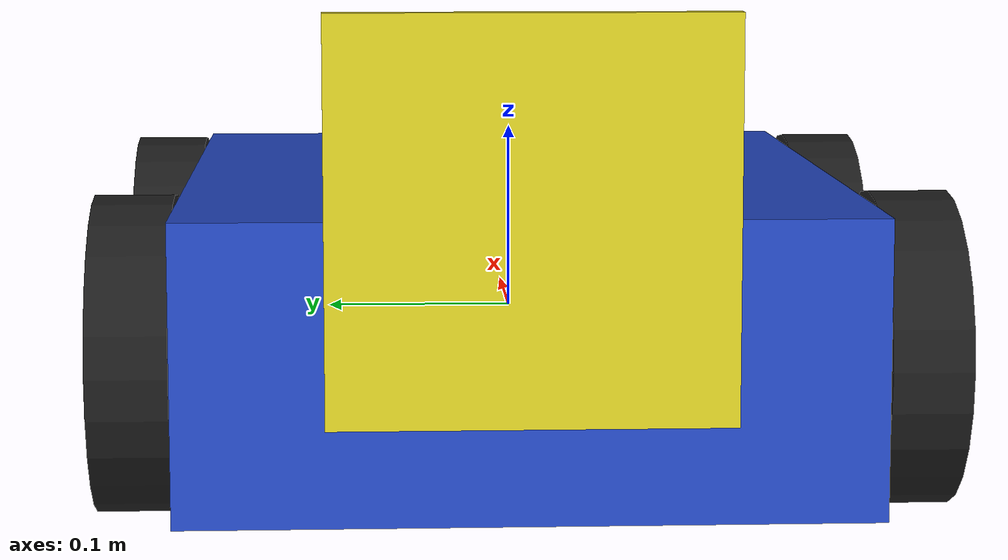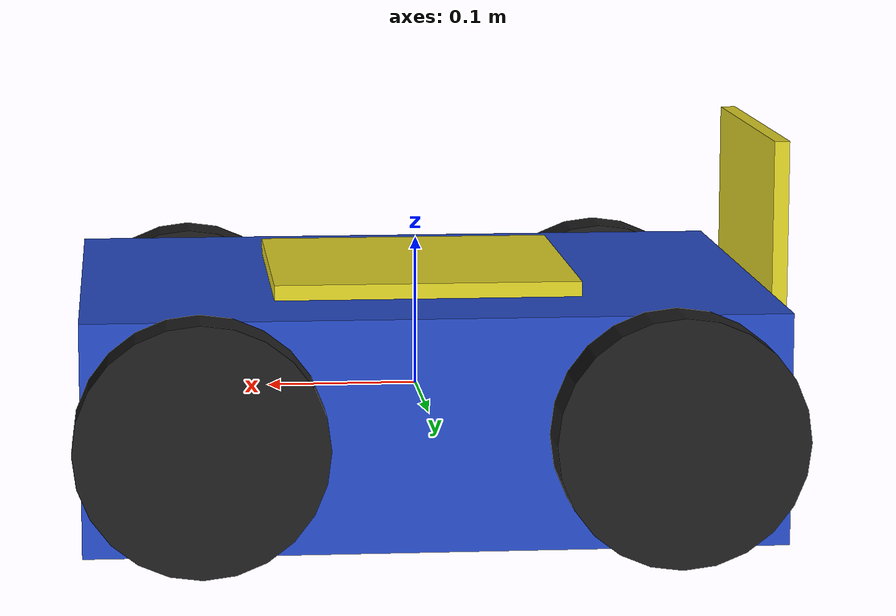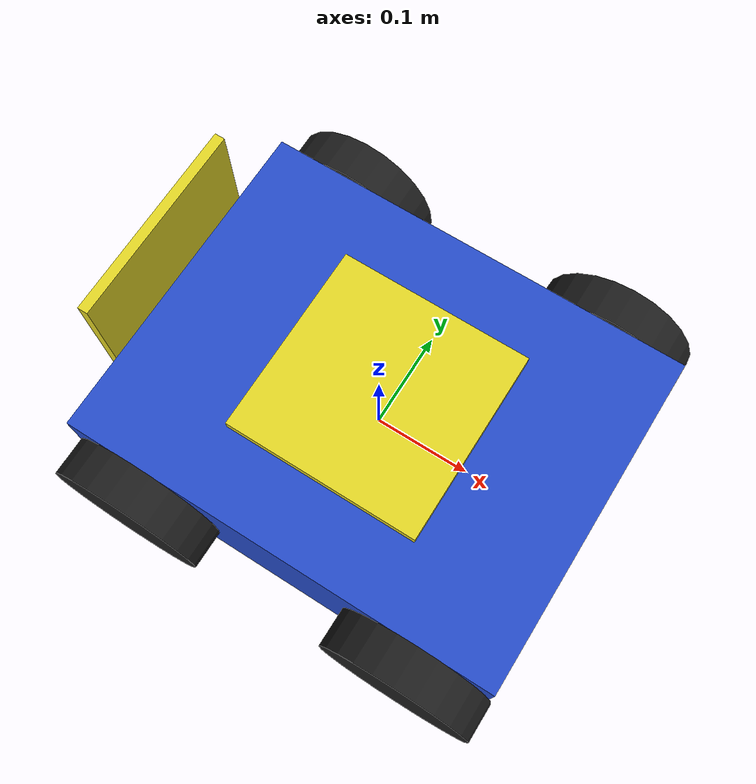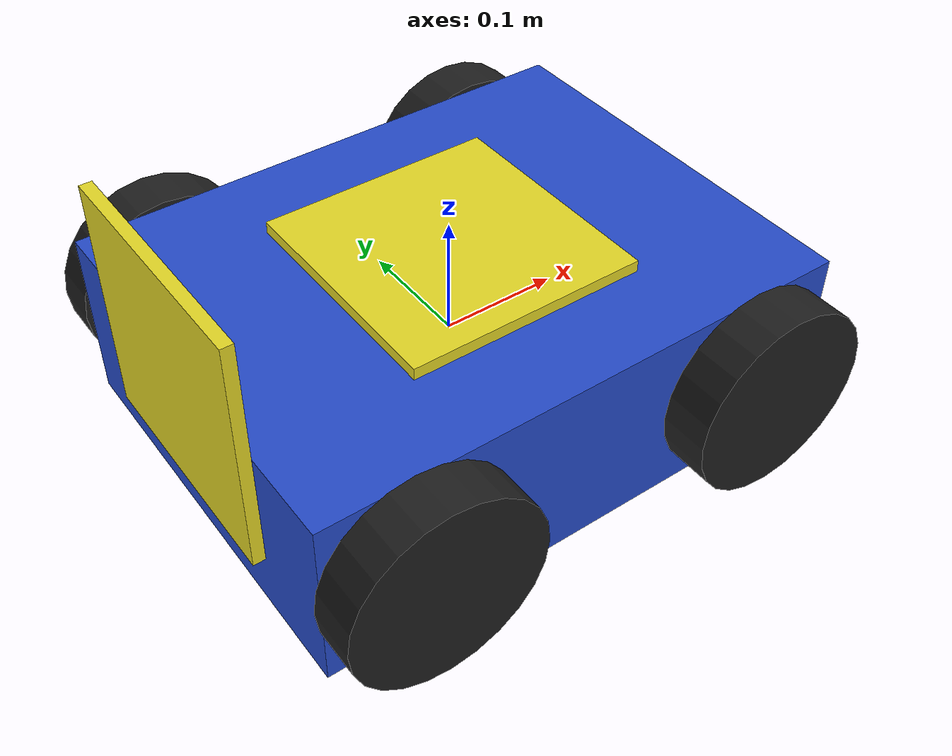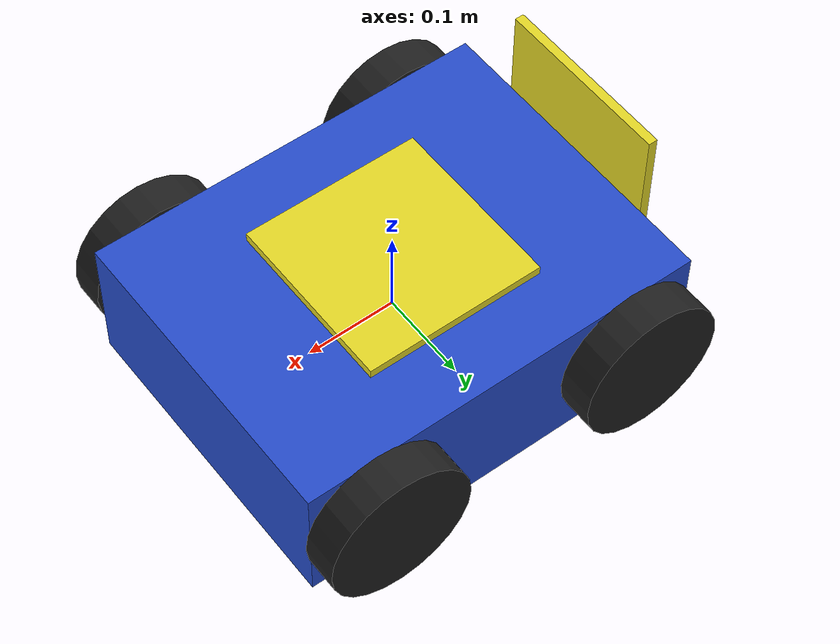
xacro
<?xml version="1.0"?>
<robot name="leader_robot" xmlns:xacro="http://www.ros.org/wiki/xacro">
    <!-- Property definitions -->
    <xacro:property name="base_width" value="0.35"/>
    <xacro:property name="base_length" value="0.45"/>
    <xacro:property name="base_height" value="0.15"/>
    <xacro:property name="wheel_radius" value="0.08"/>
    <xacro:property name="wheel_width" value="0.04"/>
    <xacro:property name="wheel_separation_length" value="0.30"/>
    <xacro:property name="marker_width" value="0.2"/>
    <xacro:property name="marker_height" value="0.2"/>
    <xacro:property name="marker_thickness" value="0.01"/>

    <!-- Base link -->
    <link name="base_link">
        <visual>
            <geometry>
                <box size="${base_length} ${base_width} ${base_height}"/>
            </geometry>
            <material name="Gazebo/Blue"/>
        </visual>
        <collision>
            <geometry>
                <box size="${base_length} ${base_width} ${base_height}"/>
            </geometry>
        </collision>
        <inertial>
            <mass value="1.0"/>
            <inertia ixx="0.01" ixy="0" ixz="0" iyy="0.01" iyz="0" izz="0.01"/>
        </inertial>
    </link>

    <!-- 添加后部标记板 -->
    <link name="marker_board">
        <visual>
            <geometry>
                <box size="${marker_thickness} ${marker_width} ${marker_height}"/>
            </geometry>
            <material name="Gazebo/Yellow"/>
        </visual>
        <collision>
            <geometry>
                <box size="${marker_thickness} ${marker_width} ${marker_height}"/>
            </geometry>
        </collision>
        <inertial>
            <mass value="0.1"/>
            <inertia ixx="0.001" ixy="0" ixz="0" iyy="0.001" iyz="0" izz="0.001"/>
        </inertial>
    </link>

    <!-- 标记板关节 -->
    <joint name="marker_board_joint" type="fixed">
        <parent link="base_link"/>
        <child link="marker_board"/>
        <origin xyz="${-base_length/2 - marker_thickness/2} 0 ${base_height/2}" rpy="0 0 0"/>
    </joint>

    <!-- 添加顶部标记图案 -->
    <link name="top_pattern">
        <visual>
            <geometry>
                <box size="${marker_width} ${marker_width} ${marker_thickness}"/>
            </geometry>
            <material name="Gazebo/Yellow"/>
        </visual>
        <inertial>
            <mass value="0.01"/>
            <inertia ixx="0.001" ixy="0" ixz="0" iyy="0.001" iyz="0" izz="0.001"/>
        </inertial>
    </link>

    <!-- 顶部图案关节 -->
    <joint name="top_pattern_joint" type="fixed">
        <parent link="base_link"/>
        <child link="top_pattern"/>
        <origin xyz="0 0 ${base_height/2 + marker_thickness/2}" rpy="0 0 0"/>
    </joint>

    <!-- Wheel Macro -->
    <xacro:macro name="wheel" params="prefix suffix x_reflect y_reflect">
        <link name="${prefix}_${suffix}_wheel">
            <visual>
                <geometry>
                    <cylinder radius="${wheel_radius}" length="${wheel_width}"/>
                </geometry>
                <material name="Gazebo/Black"/>
            </visual>
            <collision>
                <geometry>
                    <cylinder radius="${wheel_radius}" length="${wheel_width}"/>
                </geometry>
            </collision>
            <inertial>
                <mass value="0.1"/>
                <inertia ixx="0.001" ixy="0" ixz="0" iyy="0.001" iyz="0" izz="0.001"/>
            </inertial>
        </link>

        <joint name="${prefix}_${suffix}_wheel_joint" type="continuous">
            <parent link="base_link"/>
            <child link="${prefix}_${suffix}_wheel"/>
            <origin xyz="${x_reflect*wheel_separation_length/2} ${y_reflect*(base_width/2 + wheel_width/2)} 0" rpy="${pi/2} 0 0"/>
            <axis xyz="0 0 1"/>
        </joint>

        <gazebo reference="${prefix}_${suffix}_wheel">
            <material>Gazebo/Black</material>
            <mu1>2.0</mu1>
            <mu2>2.0</mu2>
            <kp>1000000.0</kp>
            <kd>100.0</kd>
        </gazebo>
    </xacro:macro>

    <!-- Create wheels -->
    <xacro:wheel prefix="front" suffix="left"  x_reflect="1" y_reflect="1" />
    <xacro:wheel prefix="front" suffix="right" x_reflect="1" y_reflect="-1" />
    <xacro:wheel prefix="rear"  suffix="left"  x_reflect="-1" y_reflect="1" />
    <xacro:wheel prefix="rear"  suffix="right" x_reflect="-1" y_reflect="-1" />

    <!-- Gazebo materials -->
    <gazebo reference="base_link">
        <material>Gazebo/Blue</material>
        <mu1>0.2</mu1>
        <mu2>0.2</mu2>
    </gazebo>

    <!-- 为新添加的部件设置Gazebo材质 -->
    <gazebo reference="marker_board">
        <material>Gazebo/Yellow</material>
    </gazebo>

    <gazebo reference="top_pattern">
        <material>Gazebo/Yellow</material>
    </gazebo>

    <!-- Gazebo plugin -->
    <gazebo>
        <plugin name="differential_drive_controller" filename="libgazebo_ros_diff_drive.so">
            <!-- Left -->
            <leftJoint>front_left_wheel_joint</leftJoint>
            <leftJoint>rear_left_wheel_joint</leftJoint>
            <!-- Right -->
            <rightJoint>front_right_wheel_joint</rightJoint>
            <rightJoint>rear_right_wheel_joint</rightJoint>

            <wheelSeparation>${base_width}</wheelSeparation>
            <wheelDiameter>${2*wheel_radius}</wheelDiameter>
            <robotBaseFrame>base_link</robotBaseFrame>
            <commandTopic>leader/cmd_vel</commandTopic>
            <odometryTopic>leader/odom</odometryTopic>
            <odometryFrame>leader/odom</odometryFrame>
            <robotNamespace>/</robotNamespace>
            <publishWheelTF>true</publishWheelTF>
            <publishWheelJointState>true</publishWheelJointState>
            <publishOdomTF>true</publishOdomTF>
            <odometrySource>world</odometrySource>
            <updateRate>100.0</updateRate>
            <wheelAcceleration>20.0</wheelAcceleration>
            <wheelTorque>200.0</wheelTorque>
            <maxVelocity>5.0</maxVelocity>
            <maxAcceleration>10.0</maxAcceleration>
            <leftJointMaxVelocity>200.0</leftJointMaxVelocity>
            <rightJointMaxVelocity>200.0</rightJointMaxVelocity>
            <wheelSlip>0.001</wheelSlip>
            <robotBaseFrame>base_link</robotBaseFrame>
            <rosDebugLevel>Debug</rosDebugLevel>
            <legacyMode>false</legacyMode>
        </plugin>
    </gazebo>
</robot>
